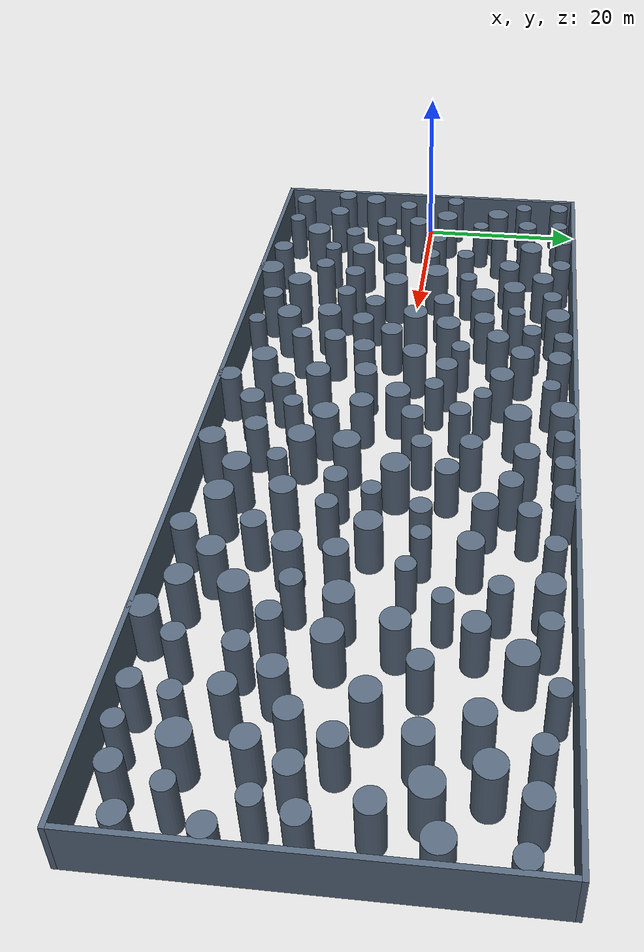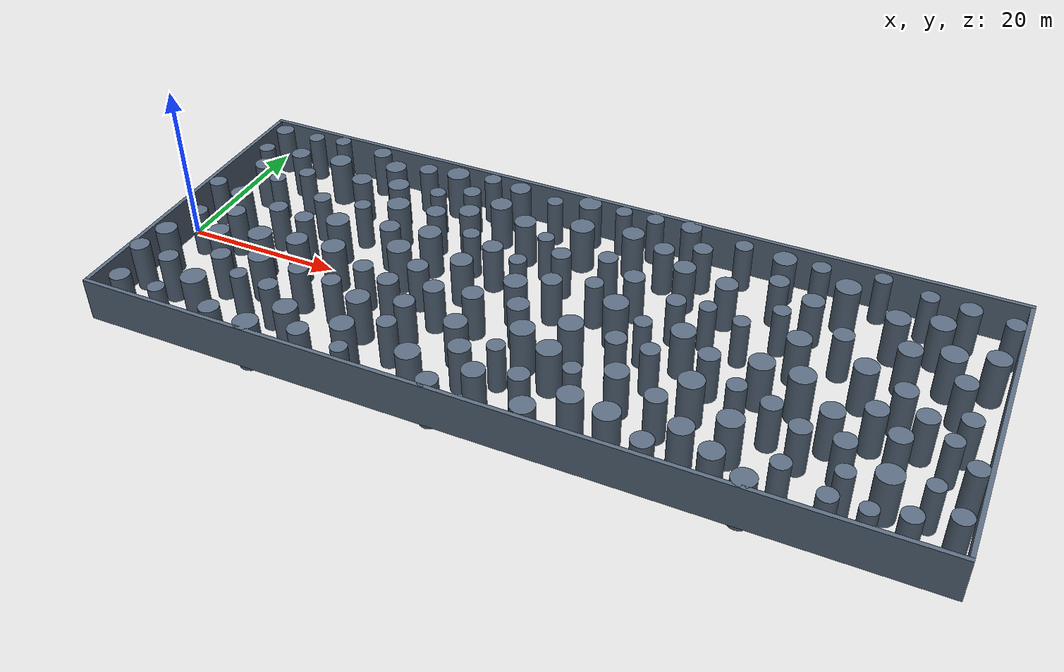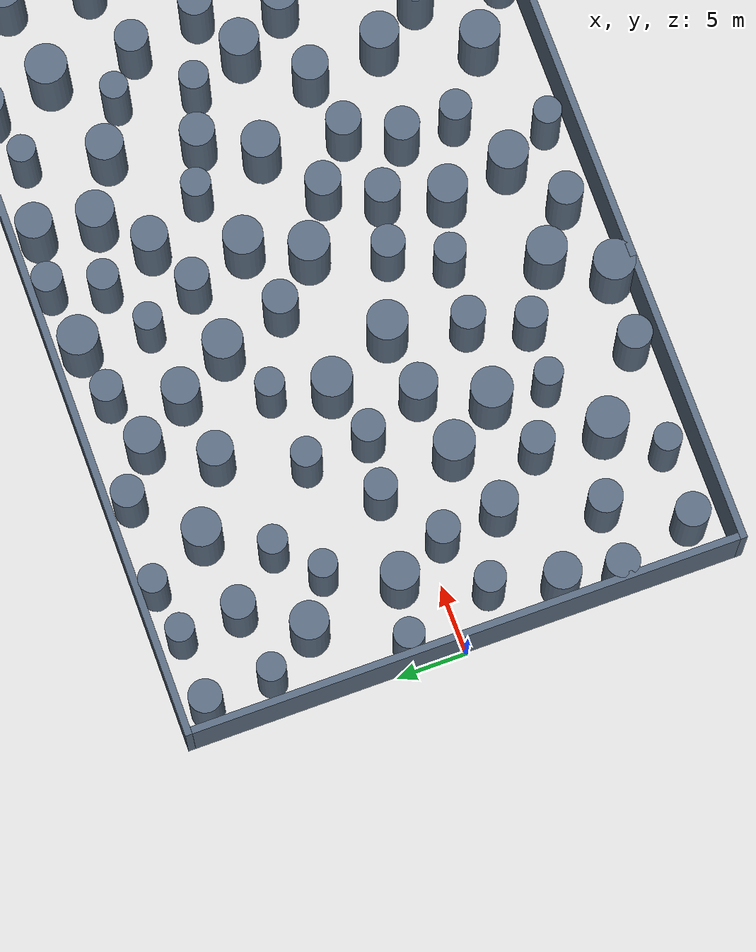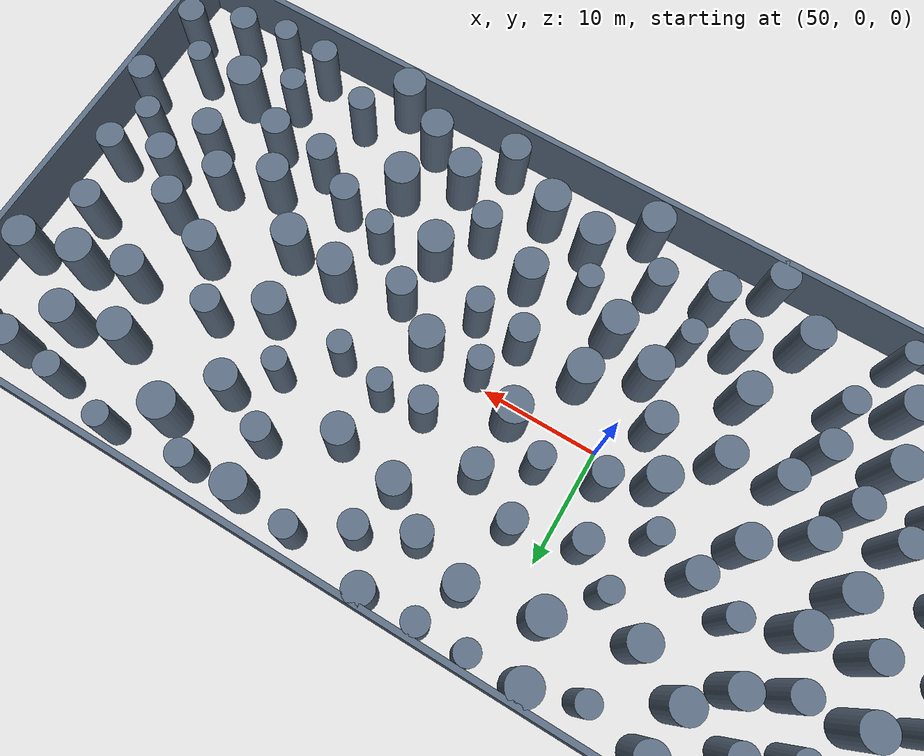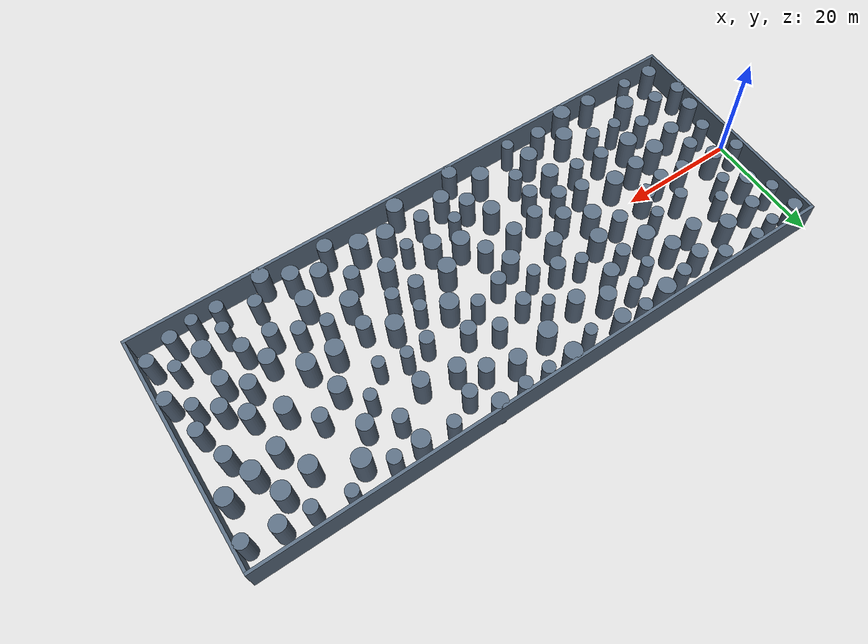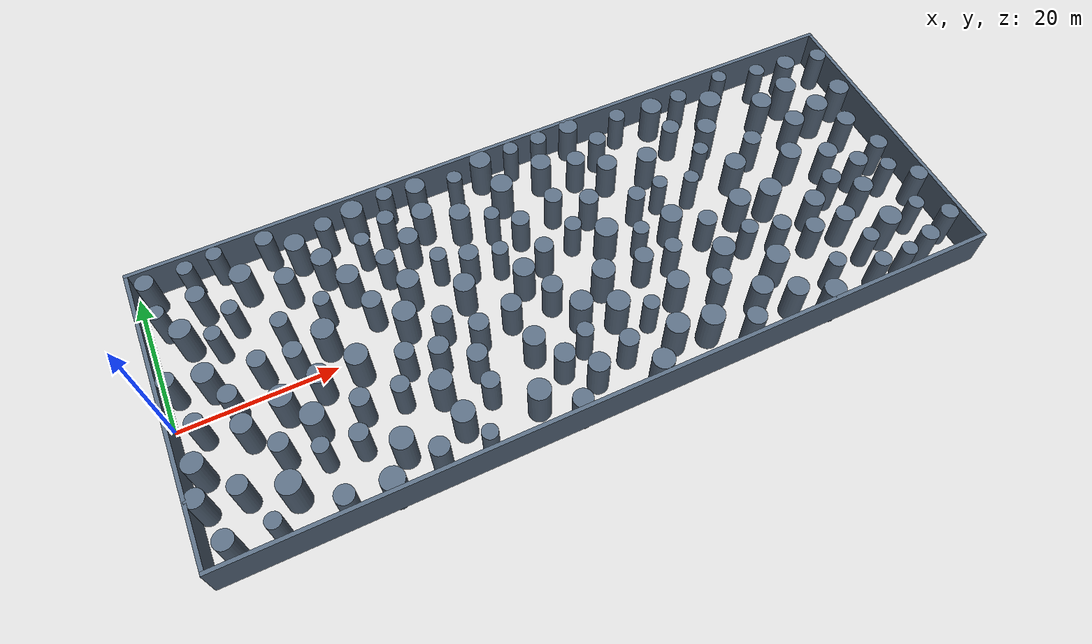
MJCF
<mujoco model="S03">
  <compiler angle="radian" />
  <include file="boundary.xml" />
  <custom>
    <text name="scene_metadata" data="{&quot;id&quot;: &quot;S03&quot;, &quot;difficulty&quot;: &quot;hard&quot;, &quot;title&quot;: &quot;SANDO hard static forest&quot;, &quot;source&quot;: &quot;SANDO&quot;, &quot;dynamic&quot;: false, &quot;benchmark_role&quot;: &quot;primary&quot;, &quot;review_duration_s&quot;: 3.0, &quot;layout_policy&quot;: &quot;direct conversion of pinned SANDO forest geometry; no route reservation&quot;, &quot;source_provenance&quot;: {&quot;world_file&quot;: &quot;research_dev/sando/docker/dev-workspace/upstream-93b2eed/worlds/hard_forest.world&quot;, &quot;world_sha256&quot;: &quot;32f30f5d76ad7c31ee75eb53a59952fef15db069978aa2d92c6386856d073c01&quot;, &quot;x_translation_m&quot;: -3.0, &quot;published_density&quot;: 0.2, &quot;cylinder_count&quot;: 162}, &quot;topology_acceptance&quot;: {&quot;require_direct_route_blocked&quot;: true, &quot;require_reachable&quot;: true, &quot;max_full_length_straight_lanes&quot;: 0, &quot;max_clear_straight_run_m&quot;: null}, &quot;obstacle_metadata&quot;: [{&quot;role&quot;: &quot;sando_static_forest&quot;, &quot;source_name&quot;: &quot;0&quot;}, {&quot;role&quot;: &quot;sando_static_forest&quot;, &quot;source_name&quot;: &quot;1&quot;}, {&quot;role&quot;: &quot;sando_static_forest&quot;, &quot;source_name&quot;: &quot;2&quot;}, {&quot;role&quot;: &quot;sando_static_forest&quot;, &quot;source_name&quot;: &quot;3&quot;}, {&quot;role&quot;: &quot;sando_static_forest&quot;, &quot;source_name&quot;: &quot;4&quot;}, {&quot;role&quot;: &quot;sando_static_forest&quot;, &quot;source_name&quot;: &quot;5&quot;}, {&quot;role&quot;: &quot;sando_static_forest&quot;, &quot;source_name&quot;: &quot;6&quot;}, {&quot;role&quot;: &quot;sando_static_forest&quot;, &quot;source_name&quot;: &quot;7&quot;}, {&quot;role&quot;: &quot;sando_static_forest&quot;, &quot;source_name&quot;: &quot;8&quot;}, {&quot;role&quot;: &quot;sando_static_forest&quot;, &quot;source_name&quot;: &quot;9&quot;}, {&quot;role&quot;: &quot;sando_static_forest&quot;, &quot;source_name&quot;: &quot;10&quot;}, {&quot;role&quot;: &quot;sando_static_forest&quot;, &quot;source_name&quot;: &quot;11&quot;}, {&quot;role&quot;: &quot;sando_static_forest&quot;, &quot;source_name&quot;: &quot;12&quot;}, {&quot;role&quot;: &quot;sando_static_forest&quot;, &quot;source_name&quot;: &quot;13&quot;}, {&quot;role&quot;: &quot;sando_static_forest&quot;, &quot;source_name&quot;: &quot;14&quot;}, {&quot;role&quot;: &quot;sando_static_forest&quot;, &quot;source_name&quot;: &quot;15&quot;}, {&quot;role&quot;: &quot;sando_static_forest&quot;, &quot;source_name&quot;: &quot;16&quot;}, {&quot;role&quot;: &quot;sando_static_forest&quot;, &quot;source_name&quot;: &quot;17&quot;}, {&quot;role&quot;: &quot;sando_static_forest&quot;, &quot;source_name&quot;: &quot;18&quot;}, {&quot;role&quot;: &quot;sando_static_forest&quot;, &quot;source_name&quot;: &quot;19&quot;}, {&quot;role&quot;: &quot;sando_static_forest&quot;, &quot;source_name&quot;: &quot;20&quot;}, {&quot;role&quot;: &quot;sando_static_forest&quot;, &quot;source_name&quot;: &quot;21&quot;}, {&quot;role&quot;: &quot;sando_static_forest&quot;, &quot;source_name&quot;: &quot;22&quot;}, {&quot;role&quot;: &quot;sando_static_forest&quot;, &quot;source_name&quot;: &quot;23&quot;}, {&quot;role&quot;: &quot;sando_static_forest&quot;, &quot;source_name&quot;: &quot;24&quot;}, {&quot;role&quot;: &quot;sando_static_forest&quot;, &quot;source_name&quot;: &quot;25&quot;}, {&quot;role&quot;: &quot;sando_static_forest&quot;, &quot;source_name&quot;: &quot;26&quot;}, {&quot;role&quot;: &quot;sando_static_forest&quot;, &quot;source_name&quot;: &quot;27&quot;}, {&quot;role&quot;: &quot;sando_static_forest&quot;, &quot;source_name&quot;: &quot;28&quot;}, {&quot;role&quot;: &quot;sando_static_forest&quot;, &quot;source_name&quot;: &quot;29&quot;}, {&quot;role&quot;: &quot;sando_static_forest&quot;, &quot;source_name&quot;: &quot;30&quot;}, {&quot;role&quot;: &quot;sando_static_forest&quot;, &quot;source_name&quot;: &quot;31&quot;}, {&quot;role&quot;: &quot;sando_static_forest&quot;, &quot;source_name&quot;: &quot;32&quot;}, {&quot;role&quot;: &quot;sando_static_forest&quot;, &quot;source_name&quot;: &quot;33&quot;}, {&quot;role&quot;: &quot;sando_static_forest&quot;, &quot;source_name&quot;: &quot;34&quot;}, {&quot;role&quot;: &quot;sando_static_forest&quot;, &quot;source_name&quot;: &quot;35&quot;}, {&quot;role&quot;: &quot;sando_static_forest&quot;, &quot;source_name&quot;: &quot;36&quot;}, {&quot;role&quot;: &quot;sando_static_forest&quot;, &quot;source_name&quot;: &quot;37&quot;}, {&quot;role&quot;: &quot;sando_static_forest&quot;, &quot;source_name&quot;: &quot;38&quot;}, {&quot;role&quot;: &quot;sando_static_forest&quot;, &quot;source_name&quot;: &quot;39&quot;}, {&quot;role&quot;: &quot;sando_static_forest&quot;, &quot;source_name&quot;: &quot;40&quot;}, {&quot;role&quot;: &quot;sando_static_forest&quot;, &quot;source_name&quot;: &quot;41&quot;}, {&quot;role&quot;: &quot;sando_static_forest&quot;, &quot;source_name&quot;: &quot;42&quot;}, {&quot;role&quot;: &quot;sando_static_forest&quot;, &quot;source_name&quot;: &quot;43&quot;}, {&quot;role&quot;: &quot;sando_static_forest&quot;, &quot;source_name&quot;: &quot;44&quot;}, {&quot;role&quot;: &quot;sando_static_forest&quot;, &quot;source_name&quot;: &quot;45&quot;}, {&quot;role&quot;: &quot;sando_static_forest&quot;, &quot;source_name&quot;: &quot;46&quot;}, {&quot;role&quot;: &quot;sando_static_forest&quot;, &quot;source_name&quot;: &quot;47&quot;}, {&quot;role&quot;: &quot;sando_static_forest&quot;, &quot;source_name&quot;: &quot;48&quot;}, {&quot;role&quot;: &quot;sando_static_forest&quot;, &quot;source_name&quot;: &quot;49&quot;}, {&quot;role&quot;: &quot;sando_static_forest&quot;, &quot;source_name&quot;: &quot;50&quot;}, {&quot;role&quot;: &quot;sando_static_forest&quot;, &quot;source_name&quot;: &quot;51&quot;}, {&quot;role&quot;: &quot;sando_static_forest&quot;, &quot;source_name&quot;: &quot;52&quot;}, {&quot;role&quot;: &quot;sando_static_forest&quot;, &quot;source_name&quot;: &quot;53&quot;}, {&quot;role&quot;: &quot;sando_static_forest&quot;, &quot;source_name&quot;: &quot;54&quot;}, {&quot;role&quot;: &quot;sando_static_forest&quot;, &quot;source_name&quot;: &quot;55&quot;}, {&quot;role&quot;: &quot;sando_static_forest&quot;, &quot;source_name&quot;: &quot;56&quot;}, {&quot;role&quot;: &quot;sando_static_forest&quot;, &quot;source_name&quot;: &quot;57&quot;}, {&quot;role&quot;: &quot;sando_static_forest&quot;, &quot;source_name&quot;: &quot;58&quot;}, {&quot;role&quot;: &quot;sando_static_forest&quot;, &quot;source_name&quot;: &quot;59&quot;}, {&quot;role&quot;: &quot;sando_static_forest&quot;, &quot;source_name&quot;: &quot;60&quot;}, {&quot;role&quot;: &quot;sando_static_forest&quot;, &quot;source_name&quot;: &quot;61&quot;}, {&quot;role&quot;: &quot;sando_static_forest&quot;, &quot;source_name&quot;: &quot;62&quot;}, {&quot;role&quot;: &quot;sando_static_forest&quot;, &quot;source_name&quot;: &quot;63&quot;}, {&quot;role&quot;: &quot;sando_static_forest&quot;, &quot;source_name&quot;: &quot;64&quot;}, {&quot;role&quot;: &quot;sando_static_forest&quot;, &quot;source_name&quot;: &quot;65&quot;}, {&quot;role&quot;: &quot;sando_static_forest&quot;, &quot;source_name&quot;: &quot;66&quot;}, {&quot;role&quot;: &quot;sando_static_forest&quot;, &quot;source_name&quot;: &quot;67&quot;}, {&quot;role&quot;: &quot;sando_static_forest&quot;, &quot;source_name&quot;: &quot;68&quot;}, {&quot;role&quot;: &quot;sando_static_forest&quot;, &quot;source_name&quot;: &quot;69&quot;}, {&quot;role&quot;: &quot;sando_static_forest&quot;, &quot;source_name&quot;: &quot;70&quot;}, {&quot;role&quot;: &quot;sando_static_forest&quot;, &quot;source_name&quot;: &quot;71&quot;}, {&quot;role&quot;: &quot;sando_static_forest&quot;, &quot;source_name&quot;: &quot;72&quot;}, {&quot;role&quot;: &quot;sando_static_forest&quot;, &quot;source_name&quot;: &quot;73&quot;}, {&quot;role&quot;: &quot;sando_static_forest&quot;, &quot;source_name&quot;: &quot;74&quot;}, {&quot;role&quot;: &quot;sando_static_forest&quot;, &quot;source_name&quot;: &quot;75&quot;}, {&quot;role&quot;: &quot;sando_static_forest&quot;, &quot;source_name&quot;: &quot;76&quot;}, {&quot;role&quot;: &quot;sando_static_forest&quot;, &quot;source_name&quot;: &quot;77&quot;}, {&quot;role&quot;: &quot;sando_static_forest&quot;, &quot;source_name&quot;: &quot;78&quot;}, {&quot;role&quot;: &quot;sando_static_forest&quot;, &quot;source_name&quot;: &quot;79&quot;}, {&quot;role&quot;: &quot;sando_static_forest&quot;, &quot;source_name&quot;: &quot;80&quot;}, {&quot;role&quot;: &quot;sando_static_forest&quot;, &quot;source_name&quot;: &quot;81&quot;}, {&quot;role&quot;: &quot;sando_static_forest&quot;, &quot;source_name&quot;: &quot;82&quot;}, {&quot;role&quot;: &quot;sando_static_forest&quot;, &quot;source_name&quot;: &quot;83&quot;}, {&quot;role&quot;: &quot;sando_static_forest&quot;, &quot;source_name&quot;: &quot;84&quot;}, {&quot;role&quot;: &quot;sando_static_forest&quot;, &quot;source_name&quot;: &quot;85&quot;}, {&quot;role&quot;: &quot;sando_static_forest&quot;, &quot;source_name&quot;: &quot;86&quot;}, {&quot;role&quot;: &quot;sando_static_forest&quot;, &quot;source_name&quot;: &quot;87&quot;}, {&quot;role&quot;: &quot;sando_static_forest&quot;, &quot;source_name&quot;: &quot;88&quot;}, {&quot;role&quot;: &quot;sando_static_forest&quot;, &quot;source_name&quot;: &quot;89&quot;}, {&quot;role&quot;: &quot;sando_static_forest&quot;, &quot;source_name&quot;: &quot;90&quot;}, {&quot;role&quot;: &quot;sando_static_forest&quot;, &quot;source_name&quot;: &quot;91&quot;}, {&quot;role&quot;: &quot;sando_static_forest&quot;, &quot;source_name&quot;: &quot;92&quot;}, {&quot;role&quot;: &quot;sando_static_forest&quot;, &quot;source_name&quot;: &quot;93&quot;}, {&quot;role&quot;: &quot;sando_static_forest&quot;, &quot;source_name&quot;: &quot;94&quot;}, {&quot;role&quot;: &quot;sando_static_forest&quot;, &quot;source_name&quot;: &quot;95&quot;}, {&quot;role&quot;: &quot;sando_static_forest&quot;, &quot;source_name&quot;: &quot;96&quot;}, {&quot;role&quot;: &quot;sando_static_forest&quot;, &quot;source_name&quot;: &quot;97&quot;}, {&quot;role&quot;: &quot;sando_static_forest&quot;, &quot;source_name&quot;: &quot;98&quot;}, {&quot;role&quot;: &quot;sando_static_forest&quot;, &quot;source_name&quot;: &quot;99&quot;}, {&quot;role&quot;: &quot;sando_static_forest&quot;, &quot;source_name&quot;: &quot;100&quot;}, {&quot;role&quot;: &quot;sando_static_forest&quot;, &quot;source_name&quot;: &quot;101&quot;}, {&quot;role&quot;: &quot;sando_static_forest&quot;, &quot;source_name&quot;: &quot;102&quot;}, {&quot;role&quot;: &quot;sando_static_forest&quot;, &quot;source_name&quot;: &quot;103&quot;}, {&quot;role&quot;: &quot;sando_static_forest&quot;, &quot;source_name&quot;: &quot;104&quot;}, {&quot;role&quot;: &quot;sando_static_forest&quot;, &quot;source_name&quot;: &quot;105&quot;}, {&quot;role&quot;: &quot;sando_static_forest&quot;, &quot;source_name&quot;: &quot;106&quot;}, {&quot;role&quot;: &quot;sando_static_forest&quot;, &quot;source_name&quot;: &quot;107&quot;}, {&quot;role&quot;: &quot;sando_static_forest&quot;, &quot;source_name&quot;: &quot;108&quot;}, {&quot;role&quot;: &quot;sando_static_forest&quot;, &quot;source_name&quot;: &quot;109&quot;}, {&quot;role&quot;: &quot;sando_static_forest&quot;, &quot;source_name&quot;: &quot;110&quot;}, {&quot;role&quot;: &quot;sando_static_forest&quot;, &quot;source_name&quot;: &quot;111&quot;}, {&quot;role&quot;: &quot;sando_static_forest&quot;, &quot;source_name&quot;: &quot;112&quot;}, {&quot;role&quot;: &quot;sando_static_forest&quot;, &quot;source_name&quot;: &quot;113&quot;}, {&quot;role&quot;: &quot;sando_static_forest&quot;, &quot;source_name&quot;: &quot;114&quot;}, {&quot;role&quot;: &quot;sando_static_forest&quot;, &quot;source_name&quot;: &quot;115&quot;}, {&quot;role&quot;: &quot;sando_static_forest&quot;, &quot;source_name&quot;: &quot;116&quot;}, {&quot;role&quot;: &quot;sando_static_forest&quot;, &quot;source_name&quot;: &quot;117&quot;}, {&quot;role&quot;: &quot;sando_static_forest&quot;, &quot;source_name&quot;: &quot;118&quot;}, {&quot;role&quot;: &quot;sando_static_forest&quot;, &quot;source_name&quot;: &quot;119&quot;}, {&quot;role&quot;: &quot;sando_static_forest&quot;, &quot;source_name&quot;: &quot;120&quot;}, {&quot;role&quot;: &quot;sando_static_forest&quot;, &quot;source_name&quot;: &quot;121&quot;}, {&quot;role&quot;: &quot;sando_static_forest&quot;, &quot;source_name&quot;: &quot;122&quot;}, {&quot;role&quot;: &quot;sando_static_forest&quot;, &quot;source_name&quot;: &quot;123&quot;}, {&quot;role&quot;: &quot;sando_static_forest&quot;, &quot;source_name&quot;: &quot;124&quot;}, {&quot;role&quot;: &quot;sando_static_forest&quot;, &quot;source_name&quot;: &quot;125&quot;}, {&quot;role&quot;: &quot;sando_static_forest&quot;, &quot;source_name&quot;: &quot;126&quot;}, {&quot;role&quot;: &quot;sando_static_forest&quot;, &quot;source_name&quot;: &quot;127&quot;}, {&quot;role&quot;: &quot;sando_static_forest&quot;, &quot;source_name&quot;: &quot;128&quot;}, {&quot;role&quot;: &quot;sando_static_forest&quot;, &quot;source_name&quot;: &quot;129&quot;}, {&quot;role&quot;: &quot;sando_static_forest&quot;, &quot;source_name&quot;: &quot;130&quot;}, {&quot;role&quot;: &quot;sando_static_forest&quot;, &quot;source_name&quot;: &quot;131&quot;}, {&quot;role&quot;: &quot;sando_static_forest&quot;, &quot;source_name&quot;: &quot;132&quot;}, {&quot;role&quot;: &quot;sando_static_forest&quot;, &quot;source_name&quot;: &quot;133&quot;}, {&quot;role&quot;: &quot;sando_static_forest&quot;, &quot;source_name&quot;: &quot;134&quot;}, {&quot;role&quot;: &quot;sando_static_forest&quot;, &quot;source_name&quot;: &quot;135&quot;}, {&quot;role&quot;: &quot;sando_static_forest&quot;, &quot;source_name&quot;: &quot;136&quot;}, {&quot;role&quot;: &quot;sando_static_forest&quot;, &quot;source_name&quot;: &quot;137&quot;}, {&quot;role&quot;: &quot;sando_static_forest&quot;, &quot;source_name&quot;: &quot;138&quot;}, {&quot;role&quot;: &quot;sando_static_forest&quot;, &quot;source_name&quot;: &quot;139&quot;}, {&quot;role&quot;: &quot;sando_static_forest&quot;, &quot;source_name&quot;: &quot;140&quot;}, {&quot;role&quot;: &quot;sando_static_forest&quot;, &quot;source_name&quot;: &quot;141&quot;}, {&quot;role&quot;: &quot;sando_static_forest&quot;, &quot;source_name&quot;: &quot;142&quot;}, {&quot;role&quot;: &quot;sando_static_forest&quot;, &quot;source_name&quot;: &quot;143&quot;}, {&quot;role&quot;: &quot;sando_static_forest&quot;, &quot;source_name&quot;: &quot;144&quot;}, {&quot;role&quot;: &quot;sando_static_forest&quot;, &quot;source_name&quot;: &quot;145&quot;}, {&quot;role&quot;: &quot;sando_static_forest&quot;, &quot;source_name&quot;: &quot;146&quot;}, {&quot;role&quot;: &quot;sando_static_forest&quot;, &quot;source_name&quot;: &quot;147&quot;}, {&quot;role&quot;: &quot;sando_static_forest&quot;, &quot;source_name&quot;: &quot;148&quot;}, {&quot;role&quot;: &quot;sando_static_forest&quot;, &quot;source_name&quot;: &quot;149&quot;}, {&quot;role&quot;: &quot;sando_static_forest&quot;, &quot;source_name&quot;: &quot;150&quot;}, {&quot;role&quot;: &quot;sando_static_forest&quot;, &quot;source_name&quot;: &quot;151&quot;}, {&quot;role&quot;: &quot;sando_static_forest&quot;, &quot;source_name&quot;: &quot;152&quot;}, {&quot;role&quot;: &quot;sando_static_forest&quot;, &quot;source_name&quot;: &quot;153&quot;}, {&quot;role&quot;: &quot;sando_static_forest&quot;, &quot;source_name&quot;: &quot;154&quot;}, {&quot;role&quot;: &quot;sando_static_forest&quot;, &quot;source_name&quot;: &quot;155&quot;}, {&quot;role&quot;: &quot;sando_static_forest&quot;, &quot;source_name&quot;: &quot;156&quot;}, {&quot;role&quot;: &quot;sando_static_forest&quot;, &quot;source_name&quot;: &quot;157&quot;}, {&quot;role&quot;: &quot;sando_static_forest&quot;, &quot;source_name&quot;: &quot;158&quot;}, {&quot;role&quot;: &quot;sando_static_forest&quot;, &quot;source_name&quot;: &quot;159&quot;}, {&quot;role&quot;: &quot;sando_static_forest&quot;, &quot;source_name&quot;: &quot;160&quot;}, {&quot;role&quot;: &quot;sando_static_forest&quot;, &quot;source_name&quot;: &quot;161&quot;}]}" />
  </custom>
  <worldbody>
    <body name="obstacle_4" mocap="true" pos="42.276200000000003 -8.9784299999999995 3" user="0 0 0 0 0 0">
      <geom name="obstacle_geom_4" type="cylinder" size="1.3789800000000001 3" rgba="0.35 0.42 0.5 1" />
    </body>
    <body name="obstacle_5" mocap="true" pos="77.697299999999998 -7.3944700000000001 3" user="0 0 0 0 0 0">
      <geom name="obstacle_geom_5" type="cylinder" size="1.2024699999999999 3" rgba="0.35 0.42 0.5 1" />
    </body>
    <body name="obstacle_6" mocap="true" pos="89.757000000000005 0.17536599999999999 3" user="0 0 0 0 0 0">
      <geom name="obstacle_geom_6" type="cylinder" size="1.29169 3" rgba="0.35 0.42 0.5 1" />
    </body>
    <body name="obstacle_7" mocap="true" pos="61.5107 -9.2921899999999997 3" user="0 0 0 0 0 0">
      <geom name="obstacle_geom_7" type="cylinder" size="1.3778999999999999 3" rgba="0.35 0.42 0.5 1" />
    </body>
    <body name="obstacle_8" mocap="true" pos="80.096400000000003 14.8871 3" user="0 0 0 0 0 0">
      <geom name="obstacle_geom_8" type="cylinder" size="1.49139 3" rgba="0.35 0.42 0.5 1" />
    </body>
    <body name="obstacle_9" mocap="true" pos="88.795100000000005 6.8571099999999996 3" user="0 0 0 0 0 0">
      <geom name="obstacle_geom_9" type="cylinder" size="1.3649199999999999 3" rgba="0.35 0.42 0.5 1" />
    </body>
    <body name="obstacle_10" mocap="true" pos="43.555500000000002 4.2025399999999999 3" user="0 0 0 0 0 0">
      <geom name="obstacle_geom_10" type="cylinder" size="1.0503499999999999 3" rgba="0.35 0.42 0.5 1" />
    </body>
    <body name="obstacle_11" mocap="true" pos="47.769199999999998 13.528700000000001 3" user="0 0 0 0 0 0">
      <geom name="obstacle_geom_11" type="cylinder" size="1.4833000000000001 3" rgba="0.35 0.42 0.5 1" />
    </body>
    <body name="obstacle_12" mocap="true" pos="54.7333 -18.075199999999999 3" user="0 0 0 0 0 0">
      <geom name="obstacle_geom_12" type="cylinder" size="1.4025099999999999 3" rgba="0.35 0.42 0.5 1" />
    </body>
    <body name="obstacle_13" mocap="true" pos="81.705299999999994 6.3227599999999997 3" user="0 0 0 0 0 0">
      <geom name="obstacle_geom_13" type="cylinder" size="1.1994100000000001 3" rgba="0.35 0.42 0.5 1" />
    </body>
    <body name="obstacle_14" mocap="true" pos="85.843599999999995 -9.6049900000000008 3" user="0 0 0 0 0 0">
      <geom name="obstacle_geom_14" type="cylinder" size="1.2467900000000001 3" rgba="0.35 0.42 0.5 1" />
    </body>
    <body name="obstacle_15" mocap="true" pos="19.993500000000001 2.50664 3" user="0 0 0 0 0 0">
      <geom name="obstacle_geom_15" type="cylinder" size="1.4352400000000001 3" rgba="0.35 0.42 0.5 1" />
    </body>
    <body name="obstacle_16" mocap="true" pos="79.418300000000002 -1.9268099999999999 3" user="0 0 0 0 0 0">
      <geom name="obstacle_geom_16" type="cylinder" size="1.48377 3" rgba="0.35 0.42 0.5 1" />
    </body>
    <body name="obstacle_17" mocap="true" pos="11.812799999999999 1.9317500000000001 3" user="0 0 0 0 0 0">
      <geom name="obstacle_geom_17" type="cylinder" size="1.1600299999999999 3" rgba="0.35 0.42 0.5 1" />
    </body>
    <body name="obstacle_18" mocap="true" pos="95.202299999999994 3.8645700000000001 3" user="0 0 0 0 0 0">
      <geom name="obstacle_geom_18" type="cylinder" size="1.27372 3" rgba="0.35 0.42 0.5 1" />
    </body>
    <body name="obstacle_19" mocap="true" pos="59.393300000000004 -4.32254 3" user="0 0 0 0 0 0">
      <geom name="obstacle_geom_19" type="cylinder" size="1.2224900000000001 3" rgba="0.35 0.42 0.5 1" />
    </body>
    <body name="obstacle_20" mocap="true" pos="19.650500000000001 -11.8133 3" user="0 0 0 0 0 0">
      <geom name="obstacle_geom_20" type="cylinder" size="1.14516 3" rgba="0.35 0.42 0.5 1" />
    </body>
    <body name="obstacle_21" mocap="true" pos="47.715400000000002 -15.317299999999999 3" user="0 0 0 0 0 0">
      <geom name="obstacle_geom_21" type="cylinder" size="1.32833 3" rgba="0.35 0.42 0.5 1" />
    </body>
    <body name="obstacle_22" mocap="true" pos="91.120099999999994 12.713200000000001 3" user="0 0 0 0 0 0">
      <geom name="obstacle_geom_22" type="cylinder" size="1.4383900000000001 3" rgba="0.35 0.42 0.5 1" />
    </body>
    <body name="obstacle_23" mocap="true" pos="53.941299999999998 -4.0304099999999998 3" user="0 0 0 0 0 0">
      <geom name="obstacle_geom_23" type="cylinder" size="1.4615400000000001 3" rgba="0.35 0.42 0.5 1" />
    </body>
    <body name="obstacle_24" mocap="true" pos="98.495999999999995 15.7288 3" user="0 0 0 0 0 0">
      <geom name="obstacle_geom_24" type="cylinder" size="1.1378200000000001 3" rgba="0.35 0.42 0.5 1" />
    </body>
    <body name="obstacle_25" mocap="true" pos="61.043499999999995 -0.51400400000000002 3" user="0 0 0 0 0 0">
      <geom name="obstacle_geom_25" type="cylinder" size="1.0411900000000001 3" rgba="0.35 0.42 0.5 1" />
    </body>
    <body name="obstacle_26" mocap="true" pos="25.034600000000001 8.6009600000000006 3" user="0 0 0 0 0 0">
      <geom name="obstacle_geom_26" type="cylinder" size="1.4225399999999999 3" rgba="0.35 0.42 0.5 1" />
    </body>
    <body name="obstacle_27" mocap="true" pos="80.889799999999994 -15.088900000000001 3" user="0 0 0 0 0 0">
      <geom name="obstacle_geom_27" type="cylinder" size="1.1102300000000001 3" rgba="0.35 0.42 0.5 1" />
    </body>
    <body name="obstacle_28" mocap="true" pos="5.7502200000000006 2.7553700000000001 3" user="0 0 0 0 0 0">
      <geom name="obstacle_geom_28" type="cylinder" size="1.34884 3" rgba="0.35 0.42 0.5 1" />
    </body>
    <body name="obstacle_29" mocap="true" pos="67.601299999999995 -17.732700000000001 3" user="0 0 0 0 0 0">
      <geom name="obstacle_geom_29" type="cylinder" size="1.2670999999999999 3" rgba="0.35 0.42 0.5 1" />
    </body>
    <body name="obstacle_30" mocap="true" pos="37.352499999999999 17.968299999999999 3" user="0 0 0 0 0 0">
      <geom name="obstacle_geom_30" type="cylinder" size="1.3031699999999999 3" rgba="0.35 0.42 0.5 1" />
    </body>
    <body name="obstacle_31" mocap="true" pos="95.171099999999996 -11.9642 3" user="0 0 0 0 0 0">
      <geom name="obstacle_geom_31" type="cylinder" size="1.0108200000000001 3" rgba="0.35 0.42 0.5 1" />
    </body>
    <body name="obstacle_32" mocap="true" pos="3.3331799999999996 -2.8108200000000001 3" user="0 0 0 0 0 0">
      <geom name="obstacle_geom_32" type="cylinder" size="1.1052900000000001 3" rgba="0.35 0.42 0.5 1" />
    </body>
    <body name="obstacle_33" mocap="true" pos="35.367699999999999 -12.0648 3" user="0 0 0 0 0 0">
      <geom name="obstacle_geom_33" type="cylinder" size="1.1299600000000001 3" rgba="0.35 0.42 0.5 1" />
    </body>
    <body name="obstacle_34" mocap="true" pos="10.906000000000001 18.5337 3" user="0 0 0 0 0 0">
      <geom name="obstacle_geom_34" type="cylinder" size="1.01969 3" rgba="0.35 0.42 0.5 1" />
    </body>
    <body name="obstacle_35" mocap="true" pos="72.613600000000005 12.735099999999999 3" user="0 0 0 0 0 0">
      <geom name="obstacle_geom_35" type="cylinder" size="1.1792800000000001 3" rgba="0.35 0.42 0.5 1" />
    </body>
    <body name="obstacle_36" mocap="true" pos="66.889499999999998 17.649799999999999 3" user="0 0 0 0 0 0">
      <geom name="obstacle_geom_36" type="cylinder" size="1.0847100000000001 3" rgba="0.35 0.42 0.5 1" />
    </body>
    <body name="obstacle_37" mocap="true" pos="83.617999999999995 -5.8854899999999999 3" user="0 0 0 0 0 0">
      <geom name="obstacle_geom_37" type="cylinder" size="1.3381000000000001 3" rgba="0.35 0.42 0.5 1" />
    </body>
    <body name="obstacle_38" mocap="true" pos="47.236199999999997 -3.3698299999999999 3" user="0 0 0 0 0 0">
      <geom name="obstacle_geom_38" type="cylinder" size="1.2984 3" rgba="0.35 0.42 0.5 1" />
    </body>
    <body name="obstacle_39" mocap="true" pos="31.617600000000003 -5.3555799999999998 3" user="0 0 0 0 0 0">
      <geom name="obstacle_geom_39" type="cylinder" size="1.2543 3" rgba="0.35 0.42 0.5 1" />
    </body>
    <body name="obstacle_40" mocap="true" pos="73.613699999999994 -6.194 3" user="0 0 0 0 0 0">
      <geom name="obstacle_geom_40" type="cylinder" size="1.12547 3" rgba="0.35 0.42 0.5 1" />
    </body>
    <body name="obstacle_41" mocap="true" pos="24.605799999999999 17.0916 3" user="0 0 0 0 0 0">
      <geom name="obstacle_geom_41" type="cylinder" size="1.1404399999999999 3" rgba="0.35 0.42 0.5 1" />
    </body>
    <body name="obstacle_42" mocap="true" pos="63.068799999999996 4.5660699999999999 3" user="0 0 0 0 0 0">
      <geom name="obstacle_geom_42" type="cylinder" size="1.14394 3" rgba="0.35 0.42 0.5 1" />
    </body>
    <body name="obstacle_43" mocap="true" pos="1.3427899999999999 -11.572800000000001 3" user="0 0 0 0 0 0">
      <geom name="obstacle_geom_43" type="cylinder" size="1.19401 3" rgba="0.35 0.42 0.5 1" />
    </body>
    <body name="obstacle_44" mocap="true" pos="63.432199999999995 -4.5823200000000002 3" user="0 0 0 0 0 0">
      <geom name="obstacle_geom_44" type="cylinder" size="1.11971 3" rgba="0.35 0.42 0.5 1" />
    </body>
    <body name="obstacle_45" mocap="true" pos="41.660499999999999 -3.6583199999999998 3" user="0 0 0 0 0 0">
      <geom name="obstacle_geom_45" type="cylinder" size="1.2840800000000001 3" rgba="0.35 0.42 0.5 1" />
    </body>
    <body name="obstacle_46" mocap="true" pos="48.757399999999997 2.3077100000000002 3" user="0 0 0 0 0 0">
      <geom name="obstacle_geom_46" type="cylinder" size="1.2091099999999999 3" rgba="0.35 0.42 0.5 1" />
    </body>
    <body name="obstacle_47" mocap="true" pos="49.4739 -6.97567 3" user="0 0 0 0 0 0">
      <geom name="obstacle_geom_47" type="cylinder" size="1.44194 3" rgba="0.35 0.42 0.5 1" />
    </body>
    <body name="obstacle_48" mocap="true" pos="86.4482 11.619 3" user="0 0 0 0 0 0">
      <geom name="obstacle_geom_48" type="cylinder" size="1.40452 3" rgba="0.35 0.42 0.5 1" />
    </body>
    <body name="obstacle_49" mocap="true" pos="62.909700000000001 -15.412000000000001 3" user="0 0 0 0 0 0">
      <geom name="obstacle_geom_49" type="cylinder" size="1.4997100000000001 3" rgba="0.35 0.42 0.5 1" />
    </body>
    <body name="obstacle_50" mocap="true" pos="10.979799999999999 -14.105600000000001 3" user="0 0 0 0 0 0">
      <geom name="obstacle_geom_50" type="cylinder" size="1.4934099999999999 3" rgba="0.35 0.42 0.5 1" />
    </body>
    <body name="obstacle_51" mocap="true" pos="28.630500000000001 17.765499999999999 3" user="0 0 0 0 0 0">
      <geom name="obstacle_geom_51" type="cylinder" size="1.4368300000000001 3" rgba="0.35 0.42 0.5 1" />
    </body>
    <body name="obstacle_52" mocap="true" pos="39.964399999999998 -15.551399999999999 3" user="0 0 0 0 0 0">
      <geom name="obstacle_geom_52" type="cylinder" size="1.4269700000000001 3" rgba="0.35 0.42 0.5 1" />
    </body>
    <body name="obstacle_53" mocap="true" pos="3.0383599999999999 -17.246700000000001 3" user="0 0 0 0 0 0">
      <geom name="obstacle_geom_53" type="cylinder" size="1.2264900000000001 3" rgba="0.35 0.42 0.5 1" />
    </body>
    <body name="obstacle_54" mocap="true" pos="93.507900000000006 16.415900000000001 3" user="0 0 0 0 0 0">
      <geom name="obstacle_geom_54" type="cylinder" size="1.27918 3" rgba="0.35 0.42 0.5 1" />
    </body>
    <body name="obstacle_55" mocap="true" pos="74.404700000000005 7.6418900000000001 3" user="0 0 0 0 0 0">
      <geom name="obstacle_geom_55" type="cylinder" size="1.0209999999999999 3" rgba="0.35 0.42 0.5 1" />
    </body>
    <body name="obstacle_56" mocap="true" pos="37.590899999999998 1.4142699999999999 3" user="0 0 0 0 0 0">
      <geom name="obstacle_geom_56" type="cylinder" size="1.3561799999999999 3" rgba="0.35 0.42 0.5 1" />
    </body>
    <body name="obstacle_57" mocap="true" pos="33.771799999999999 10.835599999999999 3" user="0 0 0 0 0 0">
      <geom name="obstacle_geom_57" type="cylinder" size="1.29356 3" rgba="0.35 0.42 0.5 1" />
    </body>
    <body name="obstacle_58" mocap="true" pos="17.172000000000001 18.149699999999999 3" user="0 0 0 0 0 0">
      <geom name="obstacle_geom_58" type="cylinder" size="1.16913 3" rgba="0.35 0.42 0.5 1" />
    </body>
    <body name="obstacle_59" mocap="true" pos="5.90747 -12.049200000000001 3" user="0 0 0 0 0 0">
      <geom name="obstacle_geom_59" type="cylinder" size="1.1974 3" rgba="0.35 0.42 0.5 1" />
    </body>
    <body name="obstacle_60" mocap="true" pos="83.379000000000005 18.062999999999999 3" user="0 0 0 0 0 0">
      <geom name="obstacle_geom_60" type="cylinder" size="1.0354300000000001 3" rgba="0.35 0.42 0.5 1" />
    </body>
    <body name="obstacle_61" mocap="true" pos="69.464699999999993 -2.7564600000000001 3" user="0 0 0 0 0 0">
      <geom name="obstacle_geom_61" type="cylinder" size="1.2395400000000001 3" rgba="0.35 0.42 0.5 1" />
    </body>
    <body name="obstacle_62" mocap="true" pos="74.303600000000003 -16.3536 3" user="0 0 0 0 0 0">
      <geom name="obstacle_geom_62" type="cylinder" size="1.36738 3" rgba="0.35 0.42 0.5 1" />
    </body>
    <body name="obstacle_63" mocap="true" pos="7.4298000000000002 13.672800000000001 3" user="0 0 0 0 0 0">
      <geom name="obstacle_geom_63" type="cylinder" size="1.1969000000000001 3" rgba="0.35 0.42 0.5 1" />
    </body>
    <body name="obstacle_64" mocap="true" pos="12.997299999999999 -3.7856100000000001 3" user="0 0 0 0 0 0">
      <geom name="obstacle_geom_64" type="cylinder" size="1.4515100000000001 3" rgba="0.35 0.42 0.5 1" />
    </body>
    <body name="obstacle_65" mocap="true" pos="15.357600000000001 -11.464399999999999 3" user="0 0 0 0 0 0">
      <geom name="obstacle_geom_65" type="cylinder" size="1.02105 3" rgba="0.35 0.42 0.5 1" />
    </body>
    <body name="obstacle_66" mocap="true" pos="90.642700000000005 -6.6494999999999997 3" user="0 0 0 0 0 0">
      <geom name="obstacle_geom_66" type="cylinder" size="1.2732000000000001 3" rgba="0.35 0.42 0.5 1" />
    </body>
    <body name="obstacle_67" mocap="true" pos="66.581900000000005 -11.175700000000001 3" user="0 0 0 0 0 0">
      <geom name="obstacle_geom_67" type="cylinder" size="1.24932 3" rgba="0.35 0.42 0.5 1" />
    </body>
    <body name="obstacle_68" mocap="true" pos="86.070999999999998 -17.401399999999999 3" user="0 0 0 0 0 0">
      <geom name="obstacle_geom_68" type="cylinder" size="1.1093900000000001 3" rgba="0.35 0.42 0.5 1" />
    </body>
    <body name="obstacle_69" mocap="true" pos="2.5176400000000001 13.0563 3" user="0 0 0 0 0 0">
      <geom name="obstacle_geom_69" type="cylinder" size="1.0203199999999999 3" rgba="0.35 0.42 0.5 1" />
    </body>
    <body name="obstacle_70" mocap="true" pos="15.640699999999999 5.9061000000000003 3" user="0 0 0 0 0 0">
      <geom name="obstacle_geom_70" type="cylinder" size="1.0803499999999999 3" rgba="0.35 0.42 0.5 1" />
    </body>
    <body name="obstacle_71" mocap="true" pos="57.202199999999998 6.6955299999999998 3" user="0 0 0 0 0 0">
      <geom name="obstacle_geom_71" type="cylinder" size="1.2524999999999999 3" rgba="0.35 0.42 0.5 1" />
    </body>
    <body name="obstacle_72" mocap="true" pos="97.700000000000003 9.1975200000000008 3" user="0 0 0 0 0 0">
      <geom name="obstacle_geom_72" type="cylinder" size="1.3789199999999999 3" rgba="0.35 0.42 0.5 1" />
    </body>
    <body name="obstacle_73" mocap="true" pos="53.463500000000003 3.72702 3" user="0 0 0 0 0 0">
      <geom name="obstacle_geom_73" type="cylinder" size="1.1030500000000001 3" rgba="0.35 0.42 0.5 1" />
    </body>
    <body name="obstacle_74" mocap="true" pos="58.424399999999999 13.1806 3" user="0 0 0 0 0 0">
      <geom name="obstacle_geom_74" type="cylinder" size="1.2411099999999999 3" rgba="0.35 0.42 0.5 1" />
    </body>
    <body name="obstacle_75" mocap="true" pos="41.051600000000001 11.5777 3" user="0 0 0 0 0 0">
      <geom name="obstacle_geom_75" type="cylinder" size="1.3284899999999999 3" rgba="0.35 0.42 0.5 1" />
    </body>
    <body name="obstacle_76" mocap="true" pos="61.881399999999999 10.7806 3" user="0 0 0 0 0 0">
      <geom name="obstacle_geom_76" type="cylinder" size="1.3204899999999999 3" rgba="0.35 0.42 0.5 1" />
    </body>
    <body name="obstacle_77" mocap="true" pos="74.914400000000001 -1.6515299999999999 3" user="0 0 0 0 0 0">
      <geom name="obstacle_geom_77" type="cylinder" size="1.4558899999999999 3" rgba="0.35 0.42 0.5 1" />
    </body>
    <body name="obstacle_78" mocap="true" pos="57.030700000000003 -10.7714 3" user="0 0 0 0 0 0">
      <geom name="obstacle_geom_78" type="cylinder" size="1.0376700000000001 3" rgba="0.35 0.42 0.5 1" />
    </body>
    <body name="obstacle_79" mocap="true" pos="31.080100000000002 -14.372400000000001 3" user="0 0 0 0 0 0">
      <geom name="obstacle_geom_79" type="cylinder" size="1.4097 3" rgba="0.35 0.42 0.5 1" />
    </body>
    <body name="obstacle_80" mocap="true" pos="8.1355000000000004 -5.2687099999999996 3" user="0 0 0 0 0 0">
      <geom name="obstacle_geom_80" type="cylinder" size="1.28301 3" rgba="0.35 0.42 0.5 1" />
    </body>
    <body name="obstacle_81" mocap="true" pos="2.1469699999999996 17.859300000000001 3" user="0 0 0 0 0 0">
      <geom name="obstacle_geom_81" type="cylinder" size="1.17394 3" rgba="0.35 0.42 0.5 1" />
    </body>
    <body name="obstacle_82" mocap="true" pos="21.090299999999999 6.5905899999999997 3" user="0 0 0 0 0 0">
      <geom name="obstacle_geom_82" type="cylinder" size="1.0352600000000001 3" rgba="0.35 0.42 0.5 1" />
    </body>
    <body name="obstacle_83" mocap="true" pos="95.6614 -5.2179099999999998 3" user="0 0 0 0 0 0">
      <geom name="obstacle_geom_83" type="cylinder" size="1.06159 3" rgba="0.35 0.42 0.5 1" />
    </body>
    <body name="obstacle_84" mocap="true" pos="98.165000000000006 -14.9856 3" user="0 0 0 0 0 0">
      <geom name="obstacle_geom_84" type="cylinder" size="1.14632 3" rgba="0.35 0.42 0.5 1" />
    </body>
    <body name="obstacle_85" mocap="true" pos="88.909999999999997 16.866099999999999 3" user="0 0 0 0 0 0">
      <geom name="obstacle_geom_85" type="cylinder" size="1.0782 3" rgba="0.35 0.42 0.5 1" />
    </body>
    <body name="obstacle_86" mocap="true" pos="93.853499999999997 -16.661799999999999 3" user="0 0 0 0 0 0">
      <geom name="obstacle_geom_86" type="cylinder" size="1.15795 3" rgba="0.35 0.42 0.5 1" />
    </body>
    <body name="obstacle_87" mocap="true" pos="21.114599999999999 -7.7679200000000002 3" user="0 0 0 0 0 0">
      <geom name="obstacle_geom_87" type="cylinder" size="1.20861 3" rgba="0.35 0.42 0.5 1" />
    </body>
    <body name="obstacle_88" mocap="true" pos="21.238299999999999 -18.456600000000002 3" user="0 0 0 0 0 0">
      <geom name="obstacle_geom_88" type="cylinder" size="1.4751300000000001 3" rgba="0.35 0.42 0.5 1" />
    </body>
    <body name="obstacle_89" mocap="true" pos="2.0666700000000002 -7.5300799999999999 3" user="0 0 0 0 0 0">
      <geom name="obstacle_geom_89" type="cylinder" size="1.3093699999999999 3" rgba="0.35 0.42 0.5 1" />
    </body>
    <body name="obstacle_90" mocap="true" pos="67.349500000000006 9.7198399999999996 3" user="0 0 0 0 0 0">
      <geom name="obstacle_geom_90" type="cylinder" size="1.31446 3" rgba="0.35 0.42 0.5 1" />
    </body>
    <body name="obstacle_91" mocap="true" pos="13.130400000000002 14.2889 3" user="0 0 0 0 0 0">
      <geom name="obstacle_geom_91" type="cylinder" size="1.381 3" rgba="0.35 0.42 0.5 1" />
    </body>
    <body name="obstacle_92" mocap="true" pos="25.819099999999999 -8.1753599999999995 3" user="0 0 0 0 0 0">
      <geom name="obstacle_geom_92" type="cylinder" size="1.12829 3" rgba="0.35 0.42 0.5 1" />
    </body>
    <body name="obstacle_93" mocap="true" pos="29.5809 0.73567099999999996 3" user="0 0 0 0 0 0">
      <geom name="obstacle_geom_93" type="cylinder" size="1.4543900000000001 3" rgba="0.35 0.42 0.5 1" />
    </body>
    <body name="obstacle_94" mocap="true" pos="77.123199999999997 10.77 3" user="0 0 0 0 0 0">
      <geom name="obstacle_geom_94" type="cylinder" size="1.3135699999999999 3" rgba="0.35 0.42 0.5 1" />
    </body>
    <body name="obstacle_95" mocap="true" pos="47.726799999999997 7.3260399999999999 3" user="0 0 0 0 0 0">
      <geom name="obstacle_geom_95" type="cylinder" size="1.1859 3" rgba="0.35 0.42 0.5 1" />
    </body>
    <body name="obstacle_96" mocap="true" pos="17.705300000000001 -2.9239700000000002 3" user="0 0 0 0 0 0">
      <geom name="obstacle_geom_96" type="cylinder" size="1.32603 3" rgba="0.35 0.42 0.5 1" />
    </body>
    <body name="obstacle_97" mocap="true" pos="52.357300000000002 -13.928100000000001 3" user="0 0 0 0 0 0">
      <geom name="obstacle_geom_97" type="cylinder" size="1.2176400000000001 3" rgba="0.35 0.42 0.5 1" />
    </body>
    <body name="obstacle_98" mocap="true" pos="27.159400000000002 -17.1327 3" user="0 0 0 0 0 0">
      <geom name="obstacle_geom_98" type="cylinder" size="1.2220599999999999 3" rgba="0.35 0.42 0.5 1" />
    </body>
    <body name="obstacle_99" mocap="true" pos="32.864699999999999 -17.902699999999999 3" user="0 0 0 0 0 0">
      <geom name="obstacle_geom_99" type="cylinder" size="1.0019400000000001 3" rgba="0.35 0.42 0.5 1" />
    </body>
    <body name="obstacle_100" mocap="true" pos="96.754999999999995 -1.486 3" user="0 0 0 0 0 0">
      <geom name="obstacle_geom_100" type="cylinder" size="1.18435 3" rgba="0.35 0.42 0.5 1" />
    </body>
    <body name="obstacle_101" mocap="true" pos="10.708299999999999 10.065099999999999 3" user="0 0 0 0 0 0">
      <geom name="obstacle_geom_101" type="cylinder" size="1.04074 3" rgba="0.35 0.42 0.5 1" />
    </body>
    <body name="obstacle_102" mocap="true" pos="53.510899999999999 -8.8627500000000001 3" user="0 0 0 0 0 0">
      <geom name="obstacle_geom_102" type="cylinder" size="1.4596199999999999 3" rgba="0.35 0.42 0.5 1" />
    </body>
    <body name="obstacle_103" mocap="true" pos="36.189399999999999 6.6247600000000002 3" user="0 0 0 0 0 0">
      <geom name="obstacle_geom_103" type="cylinder" size="1.0593699999999999 3" rgba="0.35 0.42 0.5 1" />
    </body>
    <body name="obstacle_104" mocap="true" pos="22.896599999999999 12.389200000000001 3" user="0 0 0 0 0 0">
      <geom name="obstacle_geom_104" type="cylinder" size="1.3303 3" rgba="0.35 0.42 0.5 1" />
    </body>
    <body name="obstacle_105" mocap="true" pos="17.965699999999998 11.609999999999999 3" user="0 0 0 0 0 0">
      <geom name="obstacle_geom_105" type="cylinder" size="1.25908 3" rgba="0.35 0.42 0.5 1" />
    </body>
    <body name="obstacle_106" mocap="true" pos="62.598699999999994 15.099399999999999 3" user="0 0 0 0 0 0">
      <geom name="obstacle_geom_106" type="cylinder" size="1.16394 3" rgba="0.35 0.42 0.5 1" />
    </body>
    <body name="obstacle_107" mocap="true" pos="65.629099999999994 -0.19702 3" user="0 0 0 0 0 0">
      <geom name="obstacle_geom_107" type="cylinder" size="1.4169700000000001 3" rgba="0.35 0.42 0.5 1" />
    </body>
    <body name="obstacle_108" mocap="true" pos="26.513300000000001 3.9134600000000002 3" user="0 0 0 0 0 0">
      <geom name="obstacle_geom_108" type="cylinder" size="1.2404599999999999 3" rgba="0.35 0.42 0.5 1" />
    </body>
    <body name="obstacle_109" mocap="true" pos="72.007000000000005 17.164899999999999 3" user="0 0 0 0 0 0">
      <geom name="obstacle_geom_109" type="cylinder" size="1.4108499999999999 3" rgba="0.35 0.42 0.5 1" />
    </body>
    <body name="obstacle_110" mocap="true" pos="15.973099999999999 -17.953600000000002 3" user="0 0 0 0 0 0">
      <geom name="obstacle_geom_110" type="cylinder" size="1.2205999999999999 3" rgba="0.35 0.42 0.5 1" />
    </body>
    <body name="obstacle_111" mocap="true" pos="7.1265000000000001 17.927900000000001 3" user="0 0 0 0 0 0">
      <geom name="obstacle_geom_111" type="cylinder" size="1.0122800000000001 3" rgba="0.35 0.42 0.5 1" />
    </body>
    <body name="obstacle_112" mocap="true" pos="22.4724 -2.40408 3" user="0 0 0 0 0 0">
      <geom name="obstacle_geom_112" type="cylinder" size="1.44621 3" rgba="0.35 0.42 0.5 1" />
    </body>
    <body name="obstacle_113" mocap="true" pos="33.253999999999998 18.412099999999999 3" user="0 0 0 0 0 0">
      <geom name="obstacle_geom_113" type="cylinder" size="1.08847 3" rgba="0.35 0.42 0.5 1" />
    </body>
    <body name="obstacle_114" mocap="true" pos="53.058999999999997 8.8640299999999996 3" user="0 0 0 0 0 0">
      <geom name="obstacle_geom_114" type="cylinder" size="1.19133 3" rgba="0.35 0.42 0.5 1" />
    </body>
    <body name="obstacle_115" mocap="true" pos="81.276200000000003 -9.5046700000000008 3" user="0 0 0 0 0 0">
      <geom name="obstacle_geom_115" type="cylinder" size="1.23132 3" rgba="0.35 0.42 0.5 1" />
    </body>
    <body name="obstacle_116" mocap="true" pos="77.484899999999996 3.7454999999999998 3" user="0 0 0 0 0 0">
      <geom name="obstacle_geom_116" type="cylinder" size="1.40323 3" rgba="0.35 0.42 0.5 1" />
    </body>
    <body name="obstacle_117" mocap="true" pos="42.540199999999999 17.0915 3" user="0 0 0 0 0 0">
      <geom name="obstacle_geom_117" type="cylinder" size="1.00051 3" rgba="0.35 0.42 0.5 1" />
    </body>
    <body name="obstacle_118" mocap="true" pos="55.337600000000002 18.540199999999999 3" user="0 0 0 0 0 0">
      <geom name="obstacle_geom_118" type="cylinder" size="1.0849299999999999 3" rgba="0.35 0.42 0.5 1" />
    </body>
    <body name="obstacle_119" mocap="true" pos="45.105499999999999 0.33119900000000002 3" user="0 0 0 0 0 0">
      <geom name="obstacle_geom_119" type="cylinder" size="1.3913 3" rgba="0.35 0.42 0.5 1" />
    </body>
    <body name="obstacle_120" mocap="true" pos="4.6406499999999999 9.6106200000000008 3" user="0 0 0 0 0 0">
      <geom name="obstacle_geom_120" type="cylinder" size="1.3525 3" rgba="0.35 0.42 0.5 1" />
    </body>
    <body name="obstacle_121" mocap="true" pos="51.214300000000001 18.480499999999999 3" user="0 0 0 0 0 0">
      <geom name="obstacle_geom_121" type="cylinder" size="1.03582 3" rgba="0.35 0.42 0.5 1" />
    </body>
    <body name="obstacle_122" mocap="true" pos="86.853399999999993 -13.713100000000001 3" user="0 0 0 0 0 0">
      <geom name="obstacle_geom_122" type="cylinder" size="1.05942 3" rgba="0.35 0.42 0.5 1" />
    </body>
    <body name="obstacle_123" mocap="true" pos="70.890299999999996 3.9575999999999998 3" user="0 0 0 0 0 0">
      <geom name="obstacle_geom_123" type="cylinder" size="1.0067299999999999 3" rgba="0.35 0.42 0.5 1" />
    </body>
    <body name="obstacle_124" mocap="true" pos="98.442999999999998 -8.1453799999999994 3" user="0 0 0 0 0 0">
      <geom name="obstacle_geom_124" type="cylinder" size="1.17025 3" rgba="0.35 0.42 0.5 1" />
    </body>
    <body name="obstacle_125" mocap="true" pos="74.599599999999995 -11.2796 3" user="0 0 0 0 0 0">
      <geom name="obstacle_geom_125" type="cylinder" size="1.46672 3" rgba="0.35 0.42 0.5 1" />
    </body>
    <body name="obstacle_126" mocap="true" pos="1.5694699999999999 3.6110000000000002 3" user="0 0 0 0 0 0">
      <geom name="obstacle_geom_126" type="cylinder" size="1.0884499999999999 3" rgba="0.35 0.42 0.5 1" />
    </body>
    <body name="obstacle_127" mocap="true" pos="90.846100000000007 -12.305400000000001 3" user="0 0 0 0 0 0">
      <geom name="obstacle_geom_127" type="cylinder" size="1.46777 3" rgba="0.35 0.42 0.5 1" />
    </body>
    <body name="obstacle_128" mocap="true" pos="23.735299999999999 -14.456200000000001 3" user="0 0 0 0 0 0">
      <geom name="obstacle_geom_128" type="cylinder" size="1.4247799999999999 3" rgba="0.35 0.42 0.5 1" />
    </body>
    <body name="obstacle_129" mocap="true" pos="85.185599999999994 2.1672199999999999 3" user="0 0 0 0 0 0">
      <geom name="obstacle_geom_129" type="cylinder" size="1.4059299999999999 3" rgba="0.35 0.42 0.5 1" />
    </body>
    <body name="obstacle_130" mocap="true" pos="37.079900000000002 -4.45756 3" user="0 0 0 0 0 0">
      <geom name="obstacle_geom_130" type="cylinder" size="1.2451700000000001 3" rgba="0.35 0.42 0.5 1" />
    </body>
    <body name="obstacle_131" mocap="true" pos="32.122599999999998 14.7666 3" user="0 0 0 0 0 0">
      <geom name="obstacle_geom_131" type="cylinder" size="1.11581 3" rgba="0.35 0.42 0.5 1" />
    </body>
    <body name="obstacle_132" mocap="true" pos="93.197800000000001 7.9561099999999998 3" user="0 0 0 0 0 0">
      <geom name="obstacle_geom_132" type="cylinder" size="1.4837899999999999 3" rgba="0.35 0.42 0.5 1" />
    </body>
    <body name="obstacle_133" mocap="true" pos="53.950299999999999 14.629200000000001 3" user="0 0 0 0 0 0">
      <geom name="obstacle_geom_133" type="cylinder" size="1.3461799999999999 3" rgba="0.35 0.42 0.5 1" />
    </body>
    <body name="obstacle_134" mocap="true" pos="28.293500000000002 12.8528 3" user="0 0 0 0 0 0">
      <geom name="obstacle_geom_134" type="cylinder" size="1.01064 3" rgba="0.35 0.42 0.5 1" />
    </body>
    <body name="obstacle_135" mocap="true" pos="27.742999999999999 -4.3522800000000004 3" user="0 0 0 0 0 0">
      <geom name="obstacle_geom_135" type="cylinder" size="1.1920299999999999 3" rgba="0.35 0.42 0.5 1" />
    </body>
    <body name="obstacle_136" mocap="true" pos="11.263299999999999 -9.1675000000000004 3" user="0 0 0 0 0 0">
      <geom name="obstacle_geom_136" type="cylinder" size="1.1868700000000001 3" rgba="0.35 0.42 0.5 1" />
    </body>
    <body name="obstacle_137" mocap="true" pos="8.3240999999999996 -17.445399999999999 3" user="0 0 0 0 0 0">
      <geom name="obstacle_geom_137" type="cylinder" size="1.0005200000000001 3" rgba="0.35 0.42 0.5 1" />
    </body>
    <body name="obstacle_138" mocap="true" pos="70.462900000000005 -14.341100000000001 3" user="0 0 0 0 0 0">
      <geom name="obstacle_geom_138" type="cylinder" size="1.3877699999999999 3" rgba="0.35 0.42 0.5 1" />
    </body>
    <body name="obstacle_139" mocap="true" pos="39.750399999999999 5.2913699999999997 3" user="0 0 0 0 0 0">
      <geom name="obstacle_geom_139" type="cylinder" size="1.2399100000000001 3" rgba="0.35 0.42 0.5 1" />
    </body>
    <body name="obstacle_140" mocap="true" pos="30.218400000000003 -9.6024399999999996 3" user="0 0 0 0 0 0">
      <geom name="obstacle_geom_140" type="cylinder" size="1.4002300000000001 3" rgba="0.35 0.42 0.5 1" />
    </body>
    <body name="obstacle_141" mocap="true" pos="44.600700000000003 -12.5047 3" user="0 0 0 0 0 0">
      <geom name="obstacle_geom_141" type="cylinder" size="1.2962800000000001 3" rgba="0.35 0.42 0.5 1" />
    </body>
    <body name="obstacle_142" mocap="true" pos="31.518599999999999 4.8444099999999999 3" user="0 0 0 0 0 0">
      <geom name="obstacle_geom_142" type="cylinder" size="1.41473 3" rgba="0.35 0.42 0.5 1" />
    </body>
    <body name="obstacle_143" mocap="true" pos="76.336500000000001 17.264700000000001 3" user="0 0 0 0 0 0">
      <geom name="obstacle_geom_143" type="cylinder" size="1.12825 3" rgba="0.35 0.42 0.5 1" />
    </body>
    <body name="obstacle_144" mocap="true" pos="57.071300000000001 1.4036599999999999 3" user="0 0 0 0 0 0">
      <geom name="obstacle_geom_144" type="cylinder" size="1.49502 3" rgba="0.35 0.42 0.5 1" />
    </body>
    <body name="obstacle_145" mocap="true" pos="66.700299999999999 4.94156 3" user="0 0 0 0 0 0">
      <geom name="obstacle_geom_145" type="cylinder" size="1.00685 3" rgba="0.35 0.42 0.5 1" />
    </body>
    <body name="obstacle_146" mocap="true" pos="58.511600000000001 -14.6325 3" user="0 0 0 0 0 0">
      <geom name="obstacle_geom_146" type="cylinder" size="1.46157 3" rgba="0.35 0.42 0.5 1" />
    </body>
    <body name="obstacle_147" mocap="true" pos="8.0010999999999992 7.44306 3" user="0 0 0 0 0 0">
      <geom name="obstacle_geom_147" type="cylinder" size="1.0157799999999999 3" rgba="0.35 0.42 0.5 1" />
    </body>
    <body name="obstacle_148" mocap="true" pos="69.119900000000001 -7.42896 3" user="0 0 0 0 0 0">
      <geom name="obstacle_geom_148" type="cylinder" size="1.4669099999999999 3" rgba="0.35 0.42 0.5 1" />
    </body>
    <body name="obstacle_149" mocap="true" pos="46.754300000000001 18.398599999999998 3" user="0 0 0 0 0 0">
      <geom name="obstacle_geom_149" type="cylinder" size="1.4253899999999999 3" rgba="0.35 0.42 0.5 1" />
    </body>
    <body name="obstacle_150" mocap="true" pos="35.356699999999996 -8.1390700000000002 3" user="0 0 0 0 0 0">
      <geom name="obstacle_geom_150" type="cylinder" size="1.2426900000000001 3" rgba="0.35 0.42 0.5 1" />
    </body>
    <body name="obstacle_151" mocap="true" pos="87.638400000000004 -3.8106800000000001 3" user="0 0 0 0 0 0">
      <geom name="obstacle_geom_151" type="cylinder" size="1.2674399999999999 3" rgba="0.35 0.42 0.5 1" />
    </body>
    <body name="obstacle_152" mocap="true" pos="44.0139 -18.6386 3" user="0 0 0 0 0 0">
      <geom name="obstacle_geom_152" type="cylinder" size="1.2481800000000001 3" rgba="0.35 0.42 0.5 1" />
    </body>
    <body name="obstacle_153" mocap="true" pos="36.719299999999997 13.7583 3" user="0 0 0 0 0 0">
      <geom name="obstacle_geom_153" type="cylinder" size="1.3506499999999999 3" rgba="0.35 0.42 0.5 1" />
    </body>
    <body name="obstacle_154" mocap="true" pos="15.955400000000001 1.3309299999999999 3" user="0 0 0 0 0 0">
      <geom name="obstacle_geom_154" type="cylinder" size="1.16811 3" rgba="0.35 0.42 0.5 1" />
    </body>
    <body name="obstacle_155" mocap="true" pos="90.044200000000004 -17.517900000000001 3" user="0 0 0 0 0 0">
      <geom name="obstacle_geom_155" type="cylinder" size="1 3" rgba="0.35 0.42 0.5 1" />
    </body>
    <body name="obstacle_156" mocap="true" pos="33.4831 -1.6793100000000001 3" user="0 0 0 0 0 0">
      <geom name="obstacle_geom_156" type="cylinder" size="1.2651600000000001 3" rgba="0.35 0.42 0.5 1" />
    </body>
    <body name="obstacle_157" mocap="true" pos="78.271799999999999 -18.531600000000001 3" user="0 0 0 0 0 0">
      <geom name="obstacle_geom_157" type="cylinder" size="1.38286 3" rgba="0.35 0.42 0.5 1" />
    </body>
    <body name="obstacle_158" mocap="true" pos="7.6090999999999998 -1.0158100000000001 3" user="0 0 0 0 0 0">
      <geom name="obstacle_geom_158" type="cylinder" size="1.17598 3" rgba="0.35 0.42 0.5 1" />
    </body>
    <body name="obstacle_159" mocap="true" pos="48.130800000000001 -10.7515 3" user="0 0 0 0 0 0">
      <geom name="obstacle_geom_159" type="cylinder" size="1.04958 3" rgba="0.35 0.42 0.5 1" />
    </body>
    <body name="obstacle_160" mocap="true" pos="15.6174 -7.4595000000000002 3" user="0 0 0 0 0 0">
      <geom name="obstacle_geom_160" type="cylinder" size="1.4651700000000001 3" rgba="0.35 0.42 0.5 1" />
    </body>
    <body name="obstacle_161" mocap="true" pos="92.586200000000005 -2.8228900000000001 3" user="0 0 0 0 0 0">
      <geom name="obstacle_geom_161" type="cylinder" size="1.25156 3" rgba="0.35 0.42 0.5 1" />
    </body>
    <body name="obstacle_162" mocap="true" pos="20.490500000000001 15.9084 3" user="0 0 0 0 0 0">
      <geom name="obstacle_geom_162" type="cylinder" size="1.3173600000000001 3" rgba="0.35 0.42 0.5 1" />
    </body>
    <body name="obstacle_163" mocap="true" pos="44.719000000000001 9.6275099999999991 3" user="0 0 0 0 0 0">
      <geom name="obstacle_geom_163" type="cylinder" size="1 3" rgba="0.35 0.42 0.5 1" />
    </body>
    <body name="obstacle_164" mocap="true" pos="59.911000000000001 18.715800000000002 3" user="0 0 0 0 0 0">
      <geom name="obstacle_geom_164" type="cylinder" size="1.2758 3" rgba="0.35 0.42 0.5 1" />
    </body>
    <body name="obstacle_165" mocap="true" pos="30.075699999999998 9.0452700000000004 3" user="0 0 0 0 0 0">
      <geom name="obstacle_geom_165" type="cylinder" size="1.19821 3" rgba="0.35 0.42 0.5 1" />
    </body>
  </worldbody>
</mujoco>

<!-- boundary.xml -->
<mujoco model="navigation-boundary">
  <worldbody>
    <body name="obstacle_0" mocap="true" pos="50 -19.75 3.25" user="0 0 0 0 0 0">
      <geom name="obstacle_geom_0" type="box" size="50 0.25 2.75" rgba="0.35 0.42 0.5 1" />
    </body>
    <body name="obstacle_1" mocap="true" pos="50 19.75 3.25" user="0 0 0 0 0 0">
      <geom name="obstacle_geom_1" type="box" size="50 0.25 2.75" rgba="0.35 0.42 0.5 1" />
    </body>
    <body name="obstacle_2" mocap="true" pos="0.25 0 3.25" user="0 0 0 0 0 0">
      <geom name="obstacle_geom_2" type="box" size="0.25 19.5 2.75" rgba="0.35 0.42 0.5 1" />
    </body>
    <body name="obstacle_3" mocap="true" pos="99.75 0 3.25" user="0 0 0 0 0 0">
      <geom name="obstacle_geom_3" type="box" size="0.25 19.5 2.75" rgba="0.35 0.42 0.5 1" />
    </body>
  </worldbody>
</mujoco>
